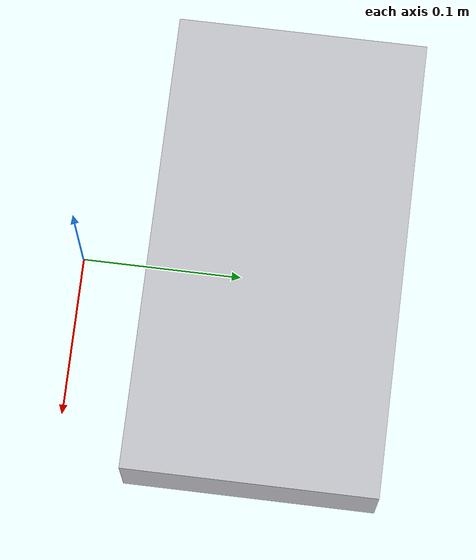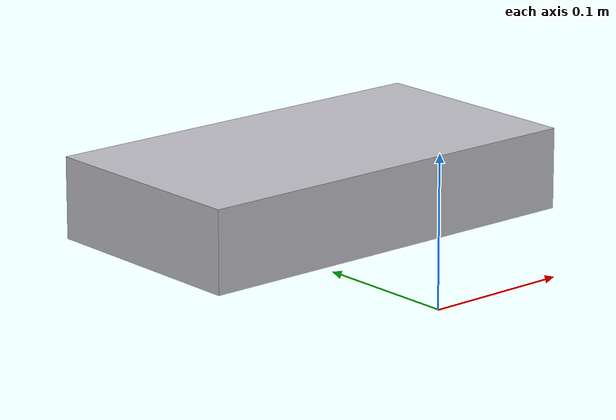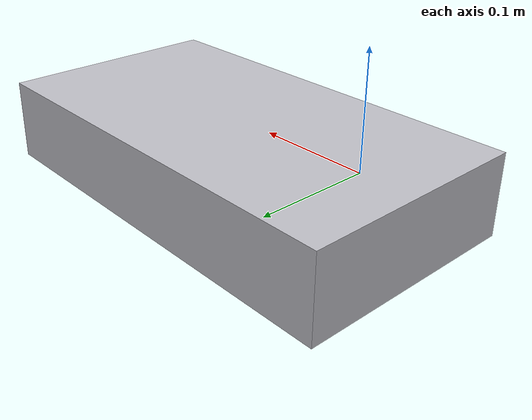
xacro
<?xml version="1.0" ?>
<robot name="ROS_rover_urdf" xmlns:xacro="http://www.ros.org/wiki/xacro">

<xacro:include filename="$(find ROS_rover_urdf_description)/urdf/materials.xacro" />
<xacro:include filename="$(find ROS_rover_urdf_description)/urdf/ROS_rover_urdf.trans" />
<xacro:include filename="$(find ROS_rover_urdf_description)/urdf/ROS_rover_urdf.gazebo" />
<link name="base_link">
  <inertial>
    <origin xyz="0.002819999999999989 0.12174798532951478 0.054123734443375565" rpy="0 0 0"/>
    <mass value="18.054749281120753"/>
    <inertia ixx="0.039196" iyy="0.122346" izz="0.152765" ixy="0.0" iyz="-0.0" ixz="-0.0"/>
  </inertial>
  <visual>
    <origin xyz="0 0 0" rpy="0 0 0"/>
    <geometry>
      <mesh filename="package://ROS_rover_urdf_description/meshes/base_link.stl" scale="0.001 0.001 0.001"/>
    </geometry>
    <material name="silver"/>
  </visual>
  <collision>
    <origin xyz="0 0 0" rpy="0 0 0"/>
    <geometry>
      <mesh filename="package://ROS_rover_urdf_description/meshes/base_link.stl" scale="0.001 0.001 0.001"/>
    </geometry>
  </collision>
</link>

</robot>

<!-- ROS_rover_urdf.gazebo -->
<robot name="ROS_rover_urdf" xmlns:xacro="http://www.ros.org/wiki/xacro" >

<xacro:property name="body_color" value="Gazebo/Silver" />

<gazebo>
  <plugin name="control" filename="libgazebo_ros_control.so"/>
</gazebo>
<gazebo reference="base_link">
  <material>${body_color}</material>
  <mu1>0.2</mu1>
  <mu2>0.2</mu2>
  <selfCollide>true</selfCollide>
  <gravity>true</gravity>
</gazebo>

</robot>
